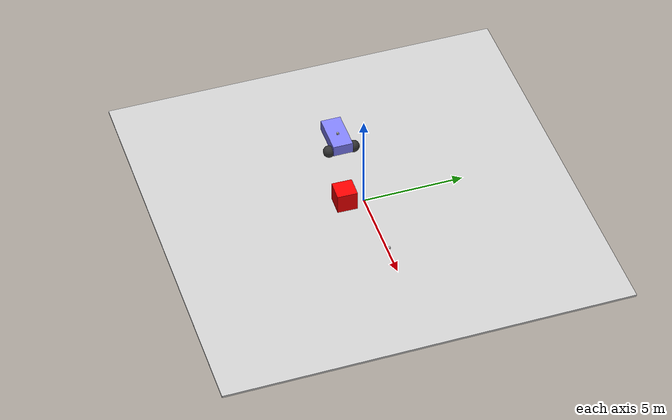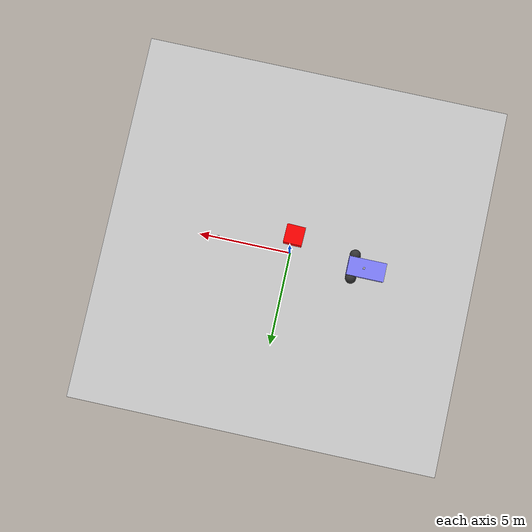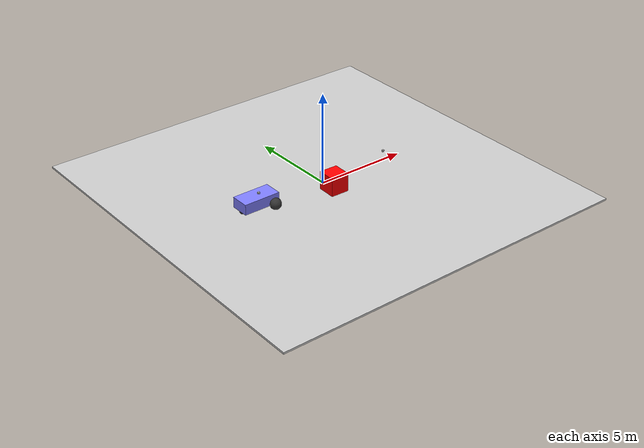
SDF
<sdf version="1.9">
 <world name="visualize_lidar_world">
  <physics name="1ms" type="ignored">
   <max_step_size>0.001</max_step_size>
   <real_time_factor>1</real_time_factor>
   <real_time_update_rate>1000</real_time_update_rate>
  </physics>
  <plugin name="ignition::gazebo::systems::Physics" filename="libignition-gazebo-physics-system.so"/>
  <plugin name="ignition::gazebo::systems::Sensors" filename="libignition-gazebo-sensors-system.so">
   <render_engine>ogre2</render_engine>
  </plugin>
  <plugin name="ignition::gazebo::systems::SceneBroadcaster" filename="libignition-gazebo-scene-broadcaster-system.so"/>
  <gravity>0 0 -9.8</gravity>
  <magnetic_field>6e-06 2.3e-05 -4.2e-05</magnetic_field>
  <atmosphere type="adiabatic"/>
  <scene><ambient>0.4 0.4 0.4 1</ambient><background>0.7 0.7 0.7 1</background><shadows>true</shadows></scene>
  <model name="ground_plane">
   <static>true</static>
   <link name="link">
    <collision name="collision"><geometry><box><size>20 20 0.1</size></box></geometry></collision>
    <visual name="visual">
     <geometry><box><size>20 20 0.1</size></box></geometry>
     <material>
      <ambient>0.8 0.8 0.8 1</ambient>
      <diffuse>0.8 0.8 0.8 1</diffuse>
      <specular>0.8 0.8 0.8 1</specular>
     </material>
    </visual>
    <inertial>
     <mass>1</mass>
     <inertia><ixx>1</ixx><ixy>0</ixy><ixz>0</ixz><iyy>1</iyy><iyz>0</iyz><izz>1</izz></inertia>
    </inertial>
   </link>
  </model>
  <model name="box">
   <pose>-0.037643 -0.943197 0.549924 -2.9e-05 -0.000133 -0.025987</pose>
   <link name="box_link">
    <inertial>
     <inertia><ixx>1</ixx><ixy>0</ixy><ixz>0</ixz><iyy>1</iyy><iyz>0</iyz><izz>1</izz></inertia>
     <mass>1</mass>
    </inertial>
    <collision name="box_collision"><geometry><box><size>1 1 1</size></box></geometry></collision>
    <visual name="box_visual">
     <geometry><box><size>1 1 1</size></box></geometry>
     <material><ambient>1 0 0 1</ambient><diffuse>1 0 0 1</diffuse><specular>1 0 0 1</specular></material>
    </visual>
   </link>
   <static>false</static>
  </model>
  <model name="model_with_lidar">
   <pose>4 -0 0.5 0 -0 3.14</pose>
   <link name="link">
    <pose>0.05 0.05 0.05 0 -0 0</pose>
    <inertial>
     <mass>0.10000000000000001</mass>
     <inertia>
      <ixx>0.00016666700000000001</ixx>
      <iyy>0.00016666700000000001</iyy>
      <izz>0.00016666700000000001</izz>
      <ixy>0</ixy>
      <ixz>0</ixz>
      <iyz>0</iyz>
     </inertia>
    </inertial>
    <collision name="collision"><geometry><box><size>0.1 0.1 0.1</size></box></geometry></collision>
    <visual name="visual"><geometry><box><size>0.1 0.1 0.1</size></box></geometry></visual>
    <sensor name="gpu_lidar" type="gpu_lidar">
     <topic>lidar</topic>
     <update_rate>10</update_rate>
     <enable_metrics>false</enable_metrics>
     <lidar>
      <scan>
       <horizontal>
        <samples>640</samples>
        <resolution>1</resolution>
        <min_angle>-1.3962600000000001</min_angle>
        <max_angle>1.3962600000000001</max_angle>
       </horizontal>
       <vertical>
        <samples>16</samples>
        <min_angle>-0.261799</min_angle>
        <max_angle>0.261799</max_angle>
        <resolution>1</resolution>
       </vertical>
      </scan>
      <range><min>0.080000000000000002</min><max>10</max><resolution>0.01</resolution></range>
      <noise><type>none</type><mean>0</mean><stddev>0</stddev></noise>
      <visibility_mask>4294967295</visibility_mask>
     </lidar>
    </sensor>
   </link>
   <static>true</static>
  </model>
  <model name="vehicle_blue">
   <pose>-4 0 0.374828 -0 -0 -0</pose>
   <link name="chassis">
    <pose>-0.151427 0 0.175 0 -0 0</pose>
    <inertial>
     <mass>1.14395</mass>
     <inertia>
      <ixx>0.126164</ixx>
      <ixy>0</ixy>
      <ixz>0</ixz>
      <iyy>0.41651899999999997</iyy>
      <iyz>0</iyz>
      <izz>0.481014</izz>
     </inertia>
    </inertial>
    <visual name="visual">
     <geometry><box><size>2.01142 1 0.568726</size></box></geometry>
     <material><ambient>0.5 0.5 1 1</ambient><diffuse>0.5 0.5 1 1</diffuse><specular>0 0 1 1</specular></material>
    </visual>
    <collision name="collision"><geometry><box><size>2.01142 1 0.568726</size></box></geometry></collision>
   </link>
   <link name="lidar_link">
    <pose>0 -0 0.5 0 -0 0</pose>
    <inertial>
     <mass>0.10000000000000001</mass>
     <inertia>
      <ixx>0.00016666700000000001</ixx>
      <iyy>0.00016666700000000001</iyy>
      <izz>0.00016666700000000001</izz>
      <ixy>0</ixy>
      <ixz>0</ixz>
      <iyz>0</iyz>
     </inertia>
    </inertial>
    <collision name="collision"><geometry><box><size>0.1 0.1 0.1</size></box></geometry></collision>
    <visual name="visual"><geometry><box><size>0.1 0.1 0.1</size></box></geometry></visual>
    <sensor name="gpu_lidar" type="gpu_lidar">
     <topic>lidar2</topic>
     <update_rate>10</update_rate>
     <enable_metrics>false</enable_metrics>
     <lidar>
      <scan>
       <horizontal>
        <samples>640</samples>
        <resolution>1</resolution>
        <min_angle>-1.3962600000000001</min_angle>
        <max_angle>1.3962600000000001</max_angle>
       </horizontal>
       <vertical>
        <samples>1</samples>
        <min_angle>0</min_angle>
        <max_angle>0</max_angle>
        <resolution>1</resolution>
       </vertical>
      </scan>
      <range><min>0.080000000000000002</min><max>10</max><resolution>0.01</resolution></range>
      <noise><type>none</type><mean>0</mean><stddev>0</stddev></noise>
      <visibility_mask>4294967295</visibility_mask>
     </lidar>
    </sensor>
   </link>
   <link name="left_wheel">
    <pose>0.554283 0.625029 -0.025 -1.5707 0 0</pose>
    <inertial>
     <mass>2</mass>
     <inertia>
      <ixx>0.14583299999999999</ixx>
      <ixy>0</ixy>
      <ixz>0</ixz>
      <iyy>0.14583299999999999</iyy>
      <iyz>0</iyz>
      <izz>0.125</izz>
     </inertia>
    </inertial>
    <visual name="visual">
     <geometry><sphere><radius>0.29999999999999999</radius></sphere></geometry>
     <material>
      <ambient>0.2 0.2 0.2 1</ambient>
      <diffuse>0.2 0.2 0.2 1</diffuse>
      <specular>0.2 0.2 0.2 1</specular>
     </material>
    </visual>
    <collision name="collision">
     <geometry><sphere><radius>0.29999999999999999</radius></sphere></geometry>
    </collision>
   </link>
   <link name="right_wheel">
    <pose>0.554282 -0.625029 -0.025 -1.5707 0 0</pose>
    <inertial>
     <mass>2</mass>
     <inertia>
      <ixx>0.14583299999999999</ixx>
      <ixy>0</ixy>
      <ixz>0</ixz>
      <iyy>0.14583299999999999</iyy>
      <iyz>0</iyz>
      <izz>0.125</izz>
     </inertia>
    </inertial>
    <visual name="visual">
     <geometry><sphere><radius>0.29999999999999999</radius></sphere></geometry>
     <material>
      <ambient>0.2 0.2 0.2 1</ambient>
      <diffuse>0.2 0.2 0.2 1</diffuse>
      <specular>0.2 0.2 0.2 1</specular>
     </material>
    </visual>
    <collision name="collision">
     <geometry><sphere><radius>0.29999999999999999</radius></sphere></geometry>
    </collision>
   </link>
   <link name="caster">
    <pose>-0.957138 0 -0.125 0 0 0</pose>
    <inertial>
     <mass>1</mass>
     <inertia>
      <ixx>0.10000000000000001</ixx>
      <ixy>0</ixy>
      <ixz>0</ixz>
      <iyy>0.10000000000000001</iyy>
      <iyz>0</iyz>
      <izz>0.10000000000000001</izz>
     </inertia>
    </inertial>
    <visual name="visual">
     <geometry><sphere><radius>0.20000000000000001</radius></sphere></geometry>
     <material>
      <ambient>0.2 0.2 0.2 1</ambient>
      <diffuse>0.2 0.2 0.2 1</diffuse>
      <specular>0.2 0.2 0.2 1</specular>
     </material>
    </visual>
    <collision name="collision">
     <geometry><sphere><radius>0.20000000000000001</radius></sphere></geometry>
    </collision>
   </link>
   <joint name="lidar_sensor_joint" type="fixed"><parent>chassis</parent><child>lidar_link</child></joint>
   <joint name="left_wheel_joint" type="revolute">
    <parent>chassis</parent>
    <child>left_wheel</child>
    <axis>
     <xyz>0 0 1</xyz>
     <limit>
      <lower>-1.7976900000000001e+308</lower>
      <upper>1.7976900000000001e+308</upper>
      <effort>inf</effort>
      <velocity>inf</velocity>
      <stiffness>100000000</stiffness>
      <dissipation>1</dissipation>
     </limit>
     <dynamics>
      <spring_reference>0</spring_reference>
      <spring_stiffness>0</spring_stiffness>
      <damping>0</damping>
      <friction>0</friction>
     </dynamics>
    </axis>
   </joint>
   <joint name="right_wheel_joint" type="revolute">
    <parent>chassis</parent>
    <child>right_wheel</child>
    <axis>
     <xyz>0 0 1</xyz>
     <limit>
      <lower>-1.7976900000000001e+308</lower>
      <upper>1.7976900000000001e+308</upper>
      <effort>inf</effort>
      <velocity>inf</velocity>
      <stiffness>100000000</stiffness>
      <dissipation>1</dissipation>
     </limit>
     <dynamics>
      <spring_reference>0</spring_reference>
      <spring_stiffness>0</spring_stiffness>
      <damping>0</damping>
      <friction>0</friction>
     </dynamics>
    </axis>
   </joint>
   <joint name="caster_wheel" type="ball"><parent>chassis</parent><child>caster</child></joint>
   <plugin name="ignition::gazebo::systems::DiffDrive" filename="libignition-gazebo-diff-drive-system.so">
    <left_joint>left_wheel_joint</left_joint>
    <right_joint>right_wheel_joint</right_joint>
    <wheel_separation>1.25</wheel_separation>
    <wheel_radius>0.3</wheel_radius>
    <odom_publish_frequency>1</odom_publish_frequency>
   </plugin>
   <static>false</static>
  </model>
  <light name="sun" type="directional">
   <pose>0 0 10 0 -0 0</pose>
   <intensity>1</intensity>
   <direction>-0.5 0.1 -0.9</direction>
   <diffuse>0.8 0.8 0.8 1</diffuse>
   <specular>0.2 0.2 0.2 1</specular>
   <attenuation>
    <range>1000</range>
    <linear>0.01</linear>
    <constant>0.90000000000000002</constant>
    <quadratic>0.001</quadratic>
   </attenuation>
   <spot><inner_angle>0</inner_angle><outer_angle>0</outer_angle><falloff>0</falloff></spot>
  </light>
 </world>
</sdf>
